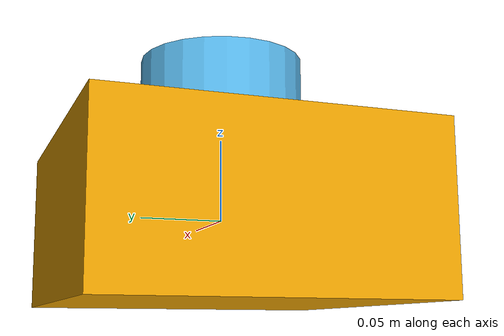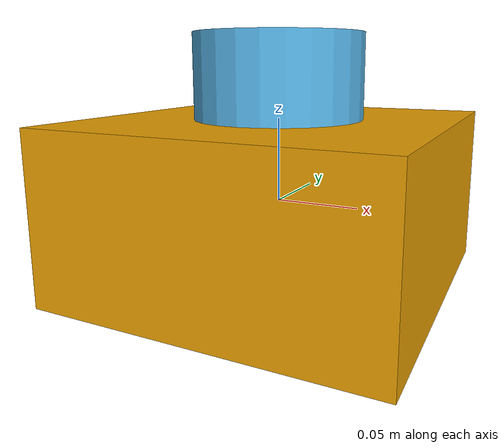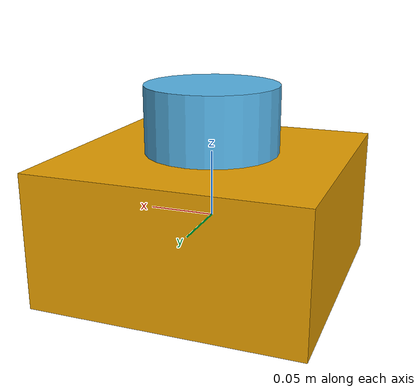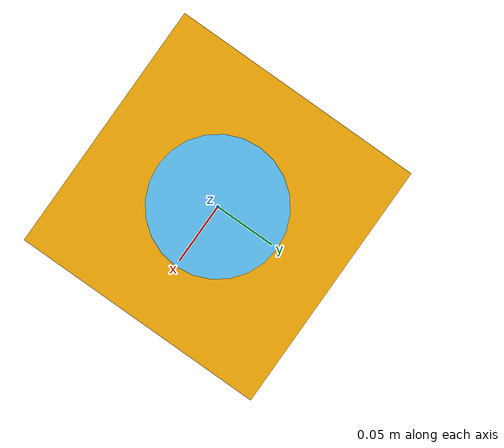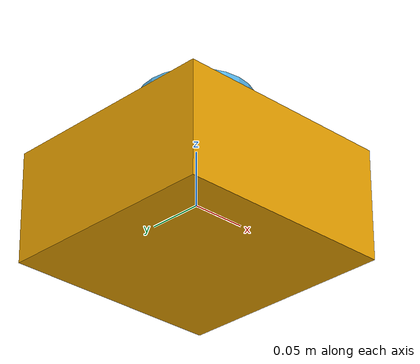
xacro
<?xml version="1.0"?>

<robot name="lidar_robot" xmlns:xacro="http://www.ros.org/wiki/xacro">

  <!-- Définition de la forme du robot -->
  <link name="base_footprint">
    <visual>
      <origin xyz="0 0 0" rpy="0 0 0"/>
      <geometry>
        <box size="0.2 0.2 0.1"/>
      </geometry>
    </visual>
  </link>

  <!-- Définition du capteur lidar -->
  <link name="laser">
    <visual>
      <origin xyz="0 0 0.05" rpy="0 0 0"/>
      <geometry>
        <cylinder length="0.1" radius="0.05"/>
      </geometry>
    </visual>
  </link>

  <!-- Joint entre la base et le capteur lidar -->
  <joint name="lidar_joint" type="fixed">
    <parent link="base_footprint"/>
    <child link="laser"/>
    <origin xyz="0 0 0" rpy="0 0 0"/>
  </joint>

  <!-- Définition de l'odométrie basée sur le capteur lidar -->
  <transmission type="SimpleTransmission" name="trans">
    <actuator name="odom"/>
    <joint name="odom_joint">
      <hardwareInterface>EffortJointInterface</hardwareInterface>
    </joint>
  </transmission>

  <!-- Définition du lien de l'odométrie -->
  <link name="odom">
    <inertial>
      <mass value="1"/>
      <origin xyz="0 0 0" rpy="0 0 0"/>
      <inertia ixx="1" ixy="0" ixz="0" iyy="1" iyz="0" izz="1"/>
    </inertial>
  </link>

  <!-- Joint entre la base et l'odométrie -->
  <joint name="base_to_odom" type="fixed">
    <parent link="odom"/>
    <child link="base_footprint"/>
    <origin xyz="0 0 0" rpy="0 0 0"/>
  </joint>

</robot>
